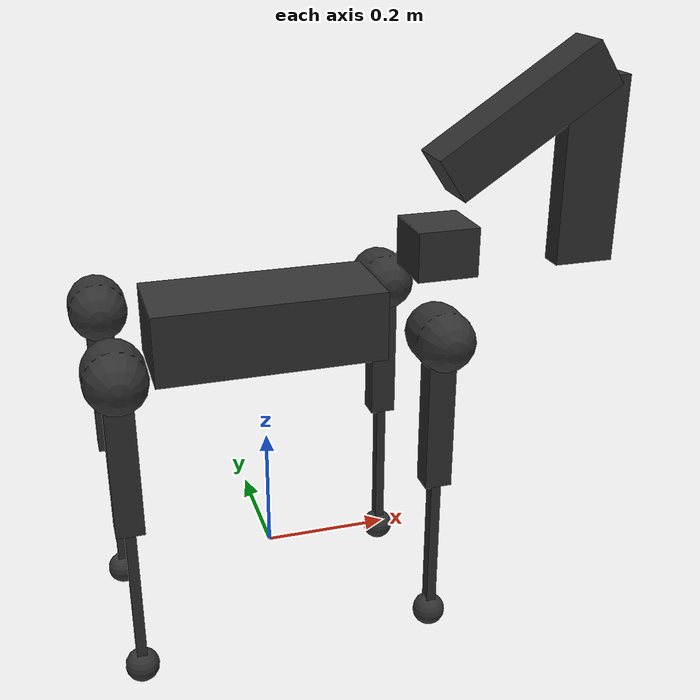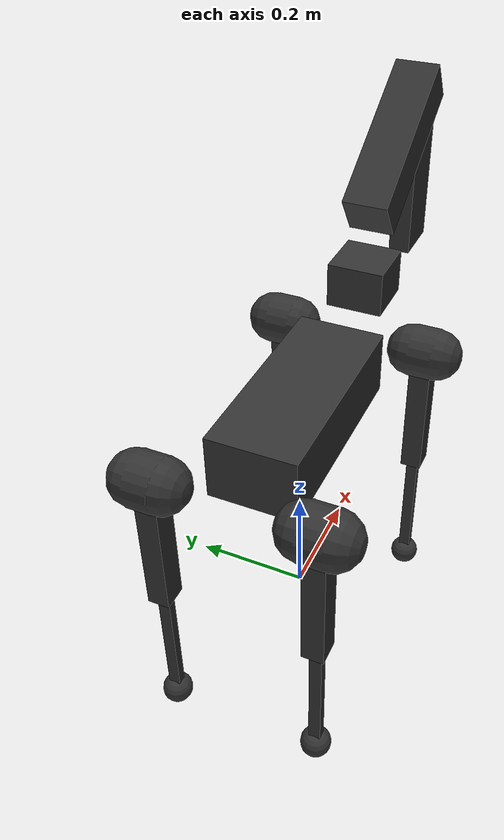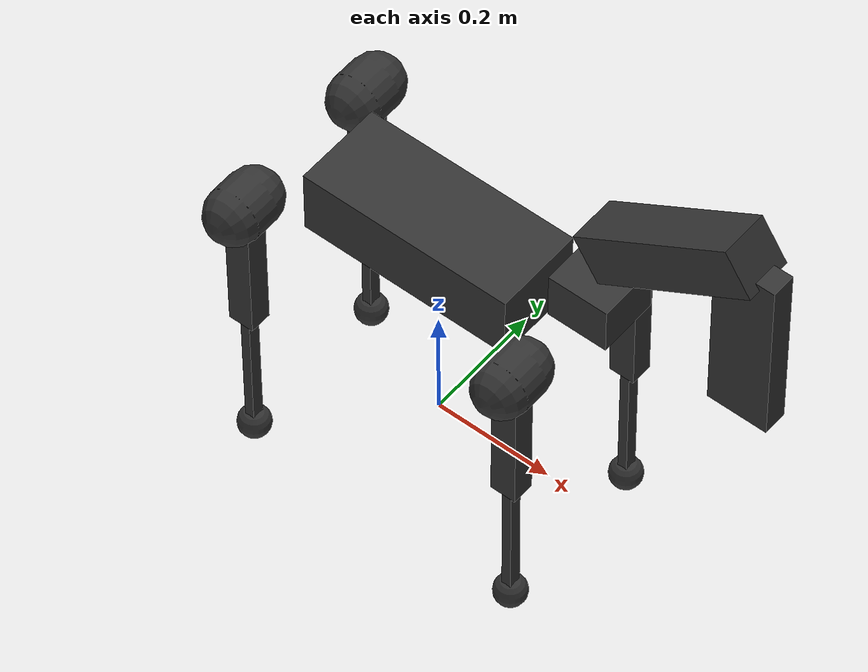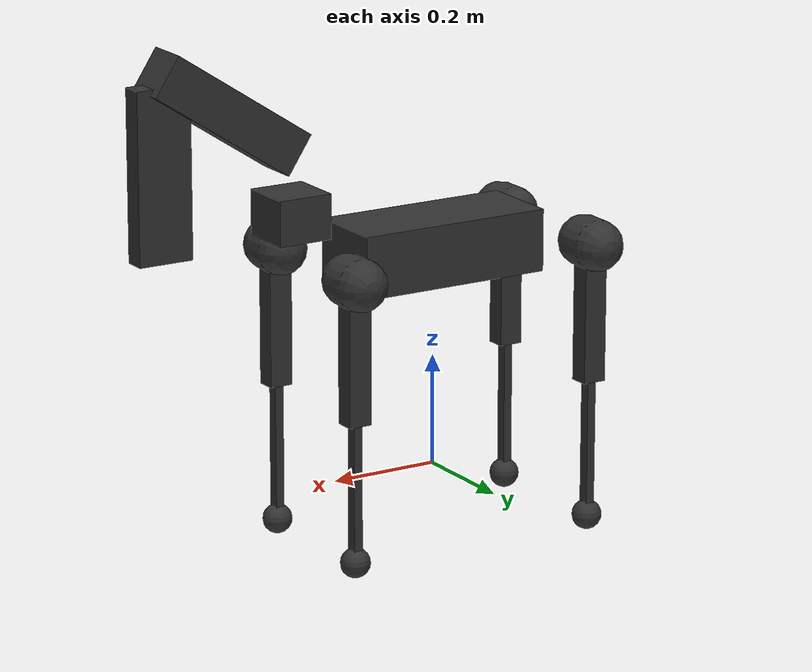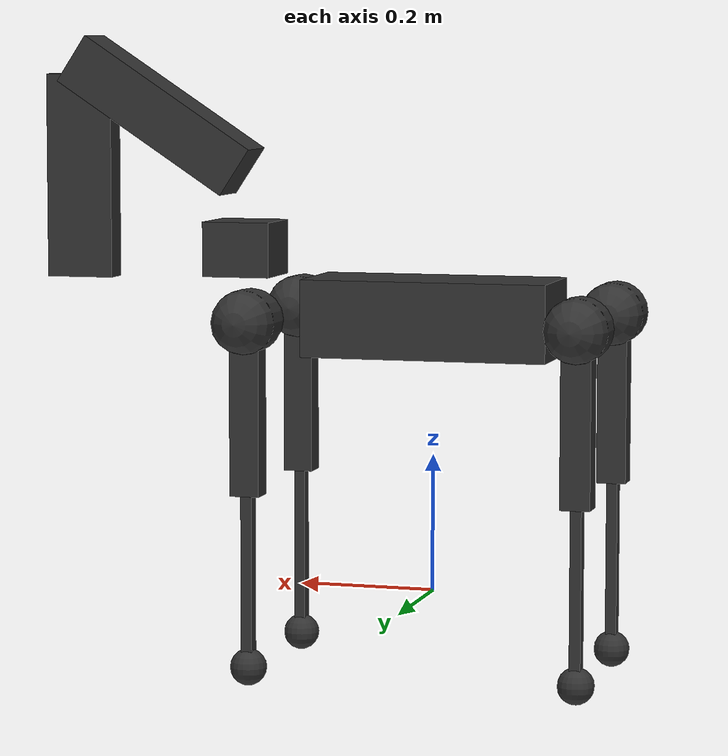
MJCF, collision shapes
<mujoco model="aliengo">
    <compiler angle="radian" meshdir="./assets/" autolimits="true"/>
    <option cone="elliptic" impratio="100" />
    <size njmax="500" nconmax="100" />
    <option gravity='0 0 -9.806' timestep='0.002'/>

    <default>

        <joint damping="0." armature="0.01" frictionloss="0." />

        <default class="follower/visual_arm">
            <geom type="mesh" contype="0" conaffinity="0" group="2"/>
        </default>
        <default class="follower/visual">
            <geom type="mesh" contype="0" conaffinity="0" group="2"/>
        </default>
        <default class="follower/collision">
            <geom group="3" rgba="0.2 0.2 0.2 0.5"/>
        </default>

        <default class="follower/hip">
            <motor ctrlrange="-4400.4 4400.4"/>
        </default>
        <default class="follower/thigh">
            <motor ctrlrange="-3500.278 3500.278"/>
        </default>
        <default class="follower/calf">
            <motor ctrlrange="-3500.278 3500.278"/>
        </default>

    </default>

    <asset>
        <mesh name="follower/trunk" file="assets/trunk.stl" />
        <mesh name="follower/hip" file="assets/hip.stl" />
        <mesh name="follower/thigh_mirror" file="assets/thigh_mirror.stl" />
        <mesh name="follower/calf" file="assets/calf.stl" />
        <mesh name="follower/thigh" file="assets/thigh.stl" />
        <mesh name="follower/base_arm_link" file="assets/base_arm_link.stl" />
        <mesh name="follower/arm_link_1" file="assets/arm_link_1.stl" />
        <mesh name="follower/arm_link_2" file="assets/arm_link_2.stl" />
        <mesh name="follower/arm_link_3" file="assets/arm_link_3.stl" />

    </asset>

  <worldbody>
        <body name="follower/trunk" pos="0 0 0.4">
            <inertial pos="0.00846406 0.00404455 -0.000762916" quat="-3.12625e-05 0.708321 0.00247254 0.705886" mass="13.042" diaginertia="0.174706 0.161175 0.033357" />
            <freejoint/>

            <!-- trunk visual mesh and collision -->
            <geom type="mesh" class="follower/visual" rgba="0.2 0.2 0.2 1" mesh="follower/trunk" />
            <geom type="box" class="follower/collision" size="0.18 0.075 0.056"/>

            <!-- modify this to add payload -->

            <!-- imu and camera -->
            <site name="follower/imu" pos="0 0 0"/>
            <camera name="follower/robotcam" pos="0.31 -0.005 0.00292751" quat= "0.4 0.4 -0.4 -0.4"/>

            <!-- FL leg -->
            <body name="follower/FL_hip" pos="0.2399 0.051 0">
                <inertial pos="-0.022191 0.015144 -1.5e-05" quat="-0.0135493 0.706835 0.0117635 0.707151" mass="1.993" diaginertia="0.00558695 0.00491009 0.00290132" />
                <joint name="follower/FL_hip_joint" pos="0 0 0" axis="1 0 0" limited="true" range="-1.22173 1.22173" />

                <!-- FL_hip visual mesh and collision -->
                <geom type="mesh" class="follower/visual" rgba="0.2 0.2 0.2 1" mesh="follower/hip"/>

                <geom type="capsule" class="follower/collision" size="0.046 0.0209" pos="0 0.083 0" quat="0.707107 0.707107 0 0"/>

                <body name="follower/FL_thigh" pos="0 0.083 0">
                    <inertial pos="-0.005607 -0.003877 -0.048199" quat="0.717987 -0.031246 -0.0335669 0.694544" mass="0.639" diaginertia="0.0058474 0.00571186 0.000324584" />
                    <joint name="follower/FL_thigh_joint" pos="0 0 0" axis="0 1 0" />

                    <!-- FL_thigh visual mesh and collision -->
                    <geom type="mesh" class="follower/visual" rgba="0.2 0.2 0.2 1" mesh="follower/thigh"/>
                    <geom type="box" class="follower/collision" size="0.125 0.0187 0.0215" pos="0 0 -0.125" quat="0.707107 0 0.707107 0"/>

                    <body name="follower/FL_calf" pos="0 0 -0.25">
                        <inertial pos="0.00215606 4.88427e-05 -0.166671" quat="0.707462 0.00517582 0.00535172 0.706712" mass="0.267" diaginertia="0.00690975 0.00689712 5.4885e-05" />

                        <joint name="follower/FL_calf_joint" pos="0 0 0" axis="0 1 0" limited="true" range="-2.77507 -0.645772" />

                        <!-- FL_calf visual mesh and collision -->
                        <geom type="mesh" class="follower/visual" rgba="0 0 0 1" mesh="follower/calf" />
                        <geom type="box" class="follower/collision" size="0.125 0.0104 0.008" pos="0 0 -0.125" quat="0.707107 0 0.707107 0"/>

                        <!-- FL_foot only collision -->
                        <geom name="FL2" class="follower/collision" size="0.0265" pos="0 0 -0.25" />
                    </body>
                </body>
            </body>

            <!-- FR leg -->
            <body name="follower/FR_hip" pos="0.2399 -0.051 0">
                <inertial pos="-0.022191 -0.015144 -1.5e-05" quat="0.0135493 0.706835 -0.0117635 0.707151" mass="1.993" diaginertia="0.00558695 0.00491009 0.00290132" />
                <joint name="follower/FR_hip_joint" pos="0 0 0" axis="1 0 0" limited="true" range="-1.22173 1.22173" />

                <!-- FR_hip visual mesh and collision -->
                <geom type="mesh" mesh="follower/hip" class="follower/visual" quat="0 1 0 0" rgba="0.2 0.2 0.2 1"/>
                <geom type="capsule" class="follower/collision" size="0.046 0.0209" pos="0 -0.083 0" quat="0.707107 0.707107 0 0"/>

                <body name="follower/FR_thigh" pos="0 -0.083 0">
                    <inertial pos="-0.005607 0.003877 -0.048199" quat="0.694544 -0.0335669 -0.031246 0.717987" mass="0.639" diaginertia="0.0058474 0.00571186 0.000324584" />
                    <joint name="follower/FR_thigh_joint" pos="0 0 0" axis="0 1 0" />

                    <!-- FR_thigh visual mesh and collision -->
                    <geom type="mesh" mesh="follower/thigh_mirror" class="follower/visual" rgba="0.2 0.2 0.2 1" />
                    <geom type="box" class="follower/collision" size="0.125 0.0187 0.0215" pos="0 0 -0.125" quat="0.707107 0 0.707107 0"/>

                    <body name="follower/FR_calf" pos="0 0 -0.25">
                        <inertial pos="0.00215606 4.88427e-05 -0.166671" quat="0.707462 0.00517582 0.00535172 0.706712" mass="0.267" diaginertia="0.00690975 0.00689712 5.4885e-05" />
                        <joint name="follower/FR_calf_joint" pos="0 0 0" axis="0 1 0" limited="true" range="-2.77507 -0.645772" />

                        <!-- FR_calf visual mesh and collision -->
                        <geom type="mesh" mesh="follower/calf" class="follower/visual" rgba="0 0 0 1"/>
                        <geom type="box" class="follower/collision" size="0.125 0.0104 0.008" pos="0 0 -0.125" quat="0.707107 0 0.707107 0"/>

                        <!-- FR_foot only collision -->
                        <geom name="FR2" class="follower/collision" size="0.0265" pos="0 0 -0.25"/>
                    </body>
                </body>
            </body>

            <!-- RL leg -->
            <body name="follower/RL_hip" pos="-0.2399 0.051 0">
                <inertial pos="0.022191 0.015144 -1.5e-05" quat="0.0117635 0.707151 -0.0135493 0.706835" mass="1.993" diaginertia="0.00558695 0.00491009 0.00290132" />
                <joint name="follower/RL_hip_joint" pos="0 0 0" axis="1 0 0" limited="true" range="-1.22173 1.22173" />

                <!-- RL_hip visual mesh and collision -->
                <geom type="mesh" class="follower/visual" quat="0 0 1 0" rgba="0.2 0.2 0.2 1" mesh="follower/hip"/>
                <geom type="capsule" class="follower/collision" size="0.046 0.0209" pos="0 0.083 0" quat="0.707107 0.707107 0 0"/>

                <body name="follower/RL_thigh" pos="0 0.083 0">
                    <inertial pos="-0.005607 -0.003877 -0.048199" quat="0.717987 -0.031246 -0.0335669 0.694544" mass="0.639" diaginertia="0.0058474 0.00571186 0.000324584" />
                    <joint name="follower/RL_thigh_joint" pos="0 0 0" axis="0 1 0" />

                    <!-- RL_thigh visual mesh and collision -->
                    <geom type="mesh" class="follower/visual" rgba="0.2 0.2 0.2 1" mesh="follower/thigh"/>
                    <geom type="box" class="follower/collision" size="0.125 0.0187 0.0215" pos="0 0 -0.125" quat="0.707107 0 0.707107 0"/>

                    <body name="follower/RL_calf" pos="0 0 -0.25">
                        <inertial pos="0.00215606 4.88427e-05 -0.166671" quat="0.707462 0.00517582 0.00535172 0.706712" mass="0.267" diaginertia="0.00690975 0.00689712 5.4885e-05" />
                        <joint name="follower/RL_calf_joint" pos="0 0 0" axis="0 1 0" limited="true" range="-2.77507 -0.645772" />

                        <!-- RL_calf visual mesh and collision -->
                        <geom type="mesh" class="follower/visual" rgba="0 0 0 1" mesh="follower/calf"/>
                        <geom type="box" class="follower/collision" size="0.125 0.0104 0.008" pos="0 0 -0.125" quat="0.707107 0 0.707107 0"/>

                        <!-- RL_foot only collision -->
                        <geom name="RL2" class="follower/collision" size="0.0265" pos="0 0 -0.25"/>
                    </body>
                </body>
            </body>

            <!-- RR leg -->
            <body name="follower/RR_hip" pos="-0.2399 -0.051 0">
                <inertial pos="0.022191 -0.015144 -1.5e-05" quat="-0.0117635 0.707151 0.0135493 0.706835" mass="1.993" diaginertia="0.00558695 0.00491009 0.00290132" />
                <joint name="follower/RR_hip_joint" pos="0 0 0" axis="1 0 0" limited="true" range="-1.22173 1.22173" />

                <!-- RR_hip visual mesh and collision -->
                <geom type="mesh" class="follower/visual" quat="0 0 0 -1" rgba="0.2 0.2 0.2 1" mesh="follower/hip"/>
                <geom type="capsule" class="follower/collision" size="0.046 0.0209" pos="0 -0.083 0" quat="0.707107 0.707107 0 0"/>

                <body name="follower/RR_thigh" pos="0 -0.083 0">
                    <inertial pos="-0.005607 0.003877 -0.048199" quat="0.694544 -0.0335669 -0.031246 0.717987" mass="0.639" diaginertia="0.0058474 0.00571186 0.000324584" />
                    <joint name="follower/RR_thigh_joint" pos="0 0 0" axis="0 1 0" />

                    <!-- RR_thigh visual mesh and collision -->
                    <geom type="mesh" class="follower/visual" rgba="0.2 0.2 0.2 1" mesh="follower/thigh_mirror"/>
                    <geom type="box" class="follower/collision" size="0.125 0.0187 0.0215" pos="0 0 -0.125" quat="0.707107 0 0.707107 0"/>

                    <body name="follower/RR_calf" pos="0 0 -0.25">
                        <inertial pos="0.00215606 4.88427e-05 -0.166671" quat="0.707462 0.00517582 0.00535172 0.706712" mass="0.267" diaginertia="0.00690975 0.00689712 5.4885e-05" />
                        <joint name="follower/RR_calf_joint" pos="0 0 0" axis="0 1 0" limited="true" range="-2.77507 -0.645772" />

                        <!-- RR_calf visual mesh and collision -->
                        <geom type="mesh" class="follower/visual" rgba="0 0 0 1" mesh="follower/calf"/>
                        <geom type="box" class="follower/collision" size="0.125 0.0104 0.008" pos="0 0 -0.125" quat="0.707107 0 0.707107 0"/>

                        <!-- RR_foot only collision -->
                        <geom name="RR2" class="follower/collision" size="0.0265" pos="0 0 -0.25"/>
                    </body>
                </body>
            </body>

    <geom pos="0.285 0 0.06" quat="1 0 0 0" type="mesh" rgba="0 0 0 1" mesh="follower/base_arm_link" class="follower/visual_arm"  />
    <body name="follower/pa_link_0_ext" pos="0.285 0 0.13" >
        <!-- Visual Mesh -->
        <!-- First joint Definition -->
      <inertial pos="0.0248 0.0 0.0169" quat="1.0 0.0 0.0 0.0" mass="0.554" diaginertia="0.001586944 0.001907517 0.001903894" />
      <joint name="follower/arm_link_1_joint" pos="0. 0 0." axis="0 0 1" limited="false" range="-1.5 1.5"  stiffness="5" damping="0.5"/>
      <!-- Visual Mesh -->
      <geom quat="1 0 0 0" type="mesh"   rgba="0 0 0 1" mesh="follower/arm_link_1" class="follower/visual_arm" />
      <geom type="box" class="follower/collision" size="0.05 0.05 0.04" pos="0. 0 -0.035"   quat="1.0 0.0 0.0 0.0"/>

      <body name="follower/pa_link_1_ext" pos="0.0498 0 0.034">
            <inertial pos="0.08 0.0 0.12" quat ="0.9238983141513943 0.0 0.3826380863272911 0.0" mass="0.554" diaginertia="0.00457 0.003831 0.001409" />
            <joint name="follower/arm_link_2_joint" pos="0.01 0 0.0" axis="0 1 0" limited="false" range="0 1" stiffness="8" damping="1.5"/>

            <!-- Visual Mesh -->
            <geom quat="1 0 0 0" type="mesh" rgba="0 0 0 1" mesh="follower/arm_link_2" class="follower/visual_arm" />
            <geom type="box" class="follower/collision" size="0.15 0.04 0.04" pos="0.08 0.0 0.125" quat ="0.5 0 -0.15 0.0"/>
            <body name="follower/pa_link_2_ext" pos="0.1817 0 0.1845" quat="1 0 0 0">
              <inertial pos="0.0194 0.0 -0.125" quat="0.7160633926253526 0.6980352553717256 0.0 0.0" mass="3.0" diaginertia="0.00205088 0.0008072 0.00201255" />
              <!-- Visual Mesh -->
              <joint name="follower/arm_link_3_joint" pos="0. 0 0" axis="0 1 0" limited="false" range="-2 0.5" stiffness="5" damping="0.5"/>
              <geom quat="1 0 0 0" type="mesh" rgba="0 0 0 1" mesh="follower/arm_link_3" class="follower/visual_arm"  />
              <geom size="0.001" pos="0.0388 0 -0.25" rgba="0 0 0 1"/>
              <geom type="box" class="follower/collision" size="0.15 0.02 0.05" pos="0.02 0 -0.15" quat="0.707107 0 0.707107 0"/>
              <site name="eef" pos="0.045 0 -0.295" size="0.01" quat="1 0 0 0" rgba="0 0 0 0."/>

            </body>
        </body>
      </body>
    </body>
  </worldbody>

</mujoco>
